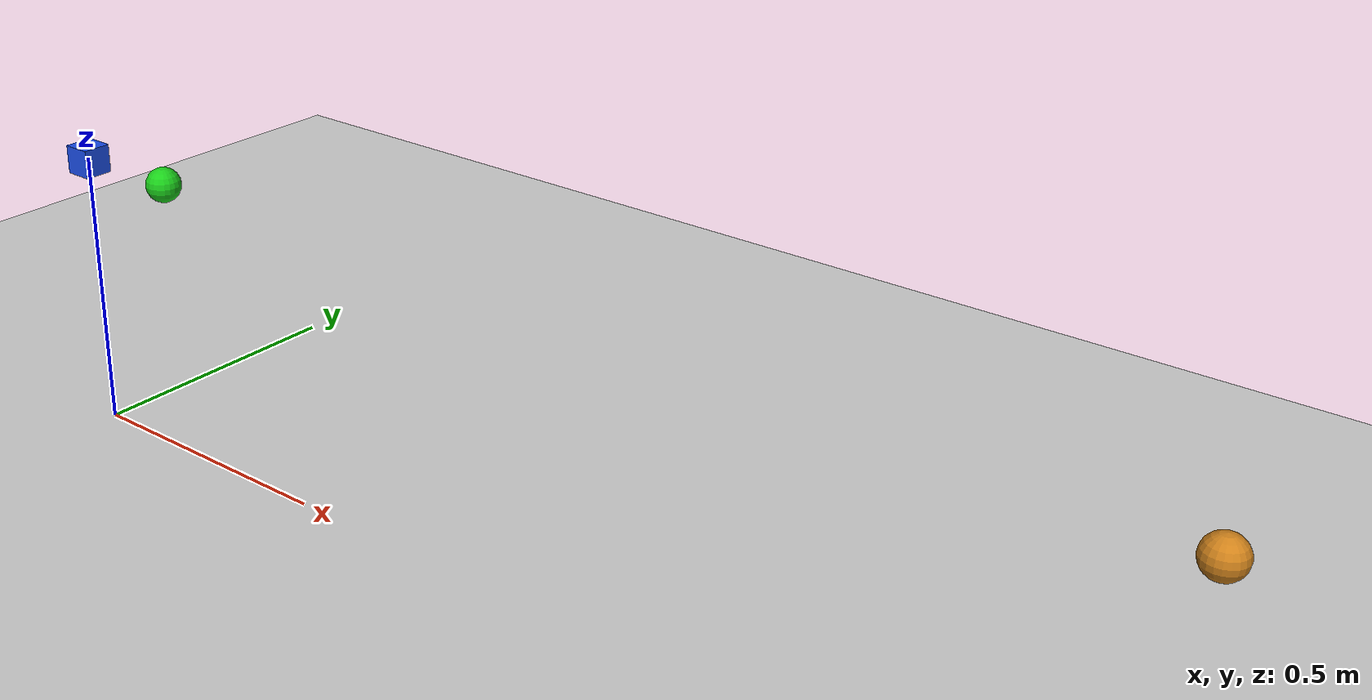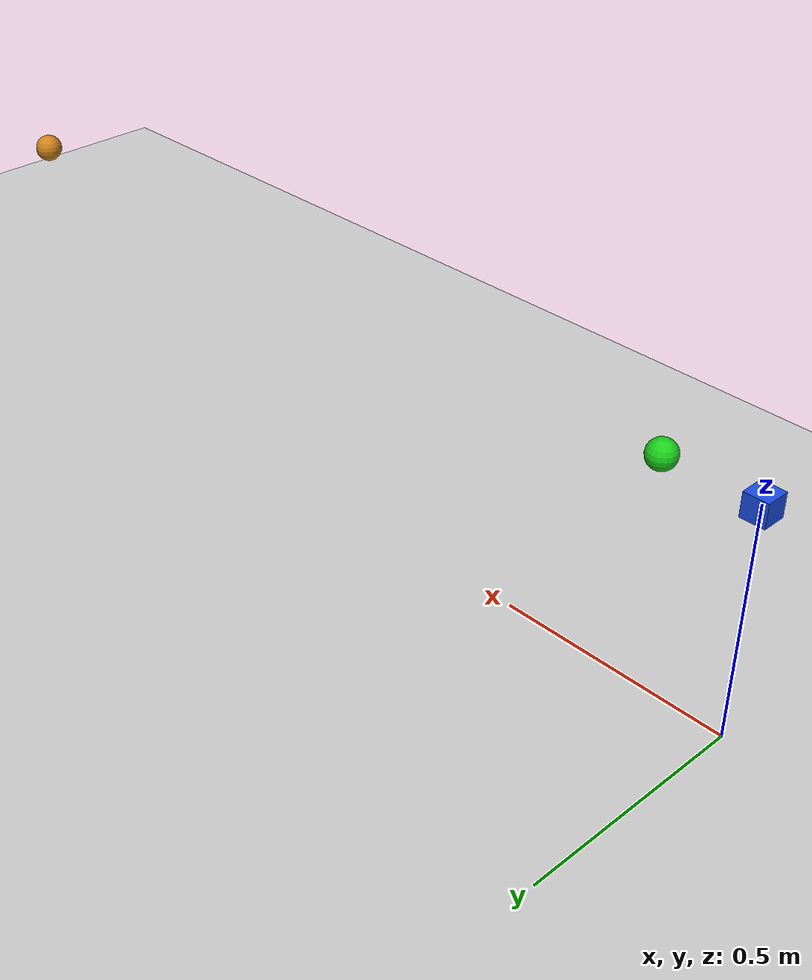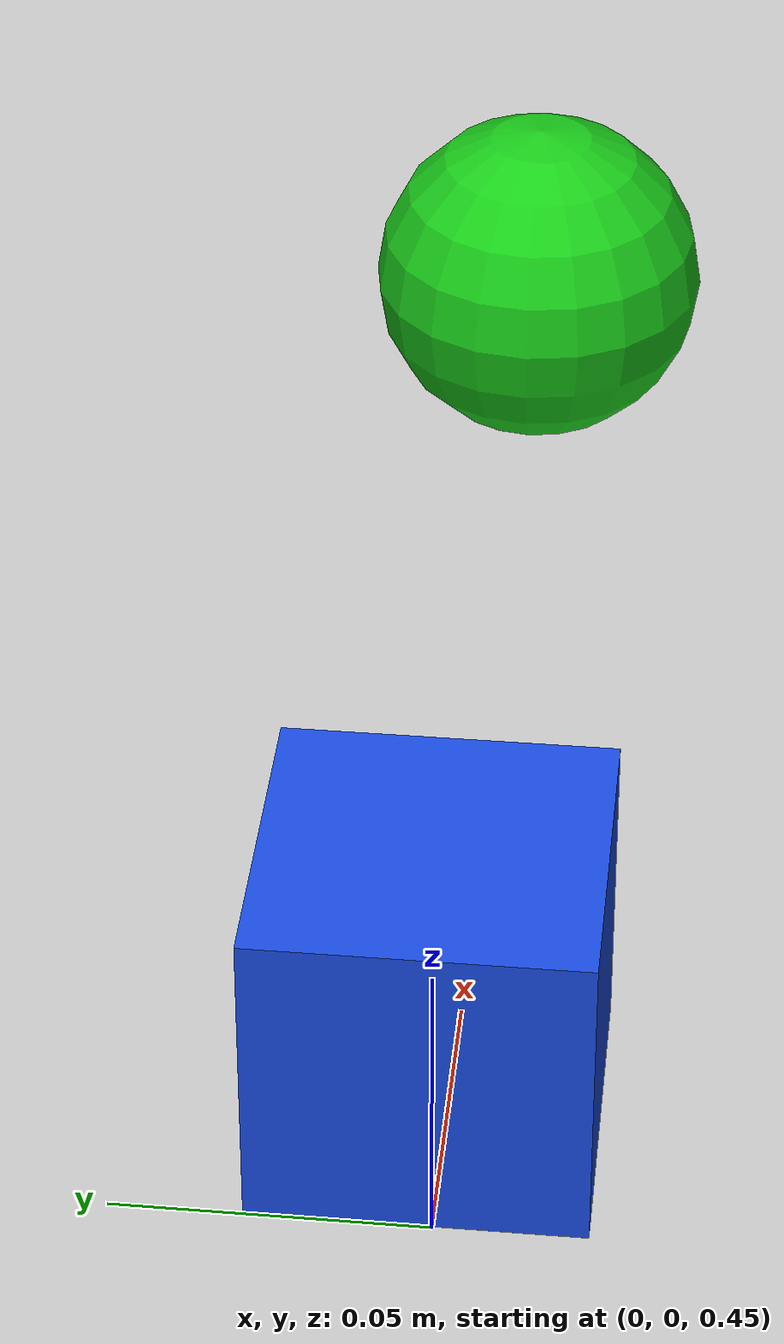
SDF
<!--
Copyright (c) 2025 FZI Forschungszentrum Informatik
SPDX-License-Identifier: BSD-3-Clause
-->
<?xml version="1.0" ?>
<sdf version="1.9">
  <world name="rfid_demo">

    <physics name="1ms" type="ignored">
      <max_step_size>0.001</max_step_size>
      <real_time_factor>1.0</real_time_factor>
    </physics>

    <plugin filename="gz-sim-physics-system"
            name="gz::sim::systems::Physics">
    </plugin>
    <plugin filename="gz-sim-user-commands-system"
            name="gz::sim::systems::UserCommands">
    </plugin>
    <plugin filename="gz-sim-scene-broadcaster-system"
            name="gz::sim::systems::SceneBroadcaster">
    </plugin>

    <light type="directional" name="sun">
      <cast_shadows>true</cast_shadows>
      <pose>0 0 10 0 0 0</pose>
      <diffuse>0.8 0.8 0.8 1</diffuse>
      <specular>0.2 0.2 0.2 1</specular>
      <direction>-0.5 0.1 -0.9</direction>
    </light>

    <model name="ground_plane">
      <static>true</static>
      <link name="link">
        <collision name="collision">
          <geometry>
            <plane><normal>0 0 1</normal><size>20 20</size></plane>
          </geometry>
        </collision>
        <visual name="visual">
          <geometry>
            <plane><normal>0 0 1</normal><size>20 20</size></plane>
          </geometry>
          <material>
            <ambient>0.8 0.8 0.8 1</ambient>
            <diffuse>0.8 0.8 0.8 1</diffuse>
          </material>
        </visual>
      </link>
    </model>

    <!-- RFID reader: static, at the origin, 0.5 m detection sphere. -->
    <model name="reader0">
      <static>true</static>
      <pose>0 0 0.5 0 0 0</pose>
      <link name="reader_link">
        <visual name="visual">
          <geometry><box><size>0.05 0.05 0.05</size></box></geometry>
          <material>
            <ambient>0.1 0.3 0.9 1</ambient>
            <diffuse>0.1 0.3 0.9 1</diffuse>
          </material>
        </visual>
      </link>
      <plugin filename="rfid_sim_systems"
              name="autofactory::rfid::RfidReader">
        <link>reader_link</link>
        <range>0.5</range>
        <update_rate>10</update_rate>
        <detected_topic>/rfid/reader0/detected</detected_topic>
        <content_topic>/rfid/reader0/content</content_topic>
        <reader_id>reader0</reader_id>
      </plugin>
    </model>

    <!-- Tag A: inside the detection zone (0.2 m from the reader). -->
    <model name="tag_a">
      <static>true</static>
      <pose>0.2 0 0.5 0 0 0</pose>
      <link name="tag_link">
        <visual name="visual">
          <geometry><sphere><radius>0.03</radius></sphere></geometry>
          <material>
            <ambient>0.1 0.8 0.1 1</ambient>
            <diffuse>0.1 0.8 0.1 1</diffuse>
          </material>
        </visual>
      </link>
      <plugin filename="rfid_sim_systems"
              name="autofactory::rfid::RfidTag">
        <id>tag-A17</id>
        <data encoding="hex">DEADBEEF36</data>
      </plugin>
    </model>

    <!-- Tag B: outside the detection zone (2.0 m from the reader). -->
    <model name="tag_b">
      <static>true</static>
      <pose>2.0 0 0.5 0 0 0</pose>
      <link name="tag_link">
        <visual name="visual">
          <geometry><sphere><radius>0.03</radius></sphere></geometry>
          <material>
            <ambient>0.8 0.5 0.1 1</ambient>
            <diffuse>0.8 0.5 0.1 1</diffuse>
          </material>
        </visual>
      </link>
      <plugin filename="rfid_sim_systems"
              name="autofactory::rfid::RfidTag">
        <id>tag-B42</id>
        <data encoding="plain">PART-SN-000123</data>
      </plugin>
    </model>

  </world>
</sdf>
